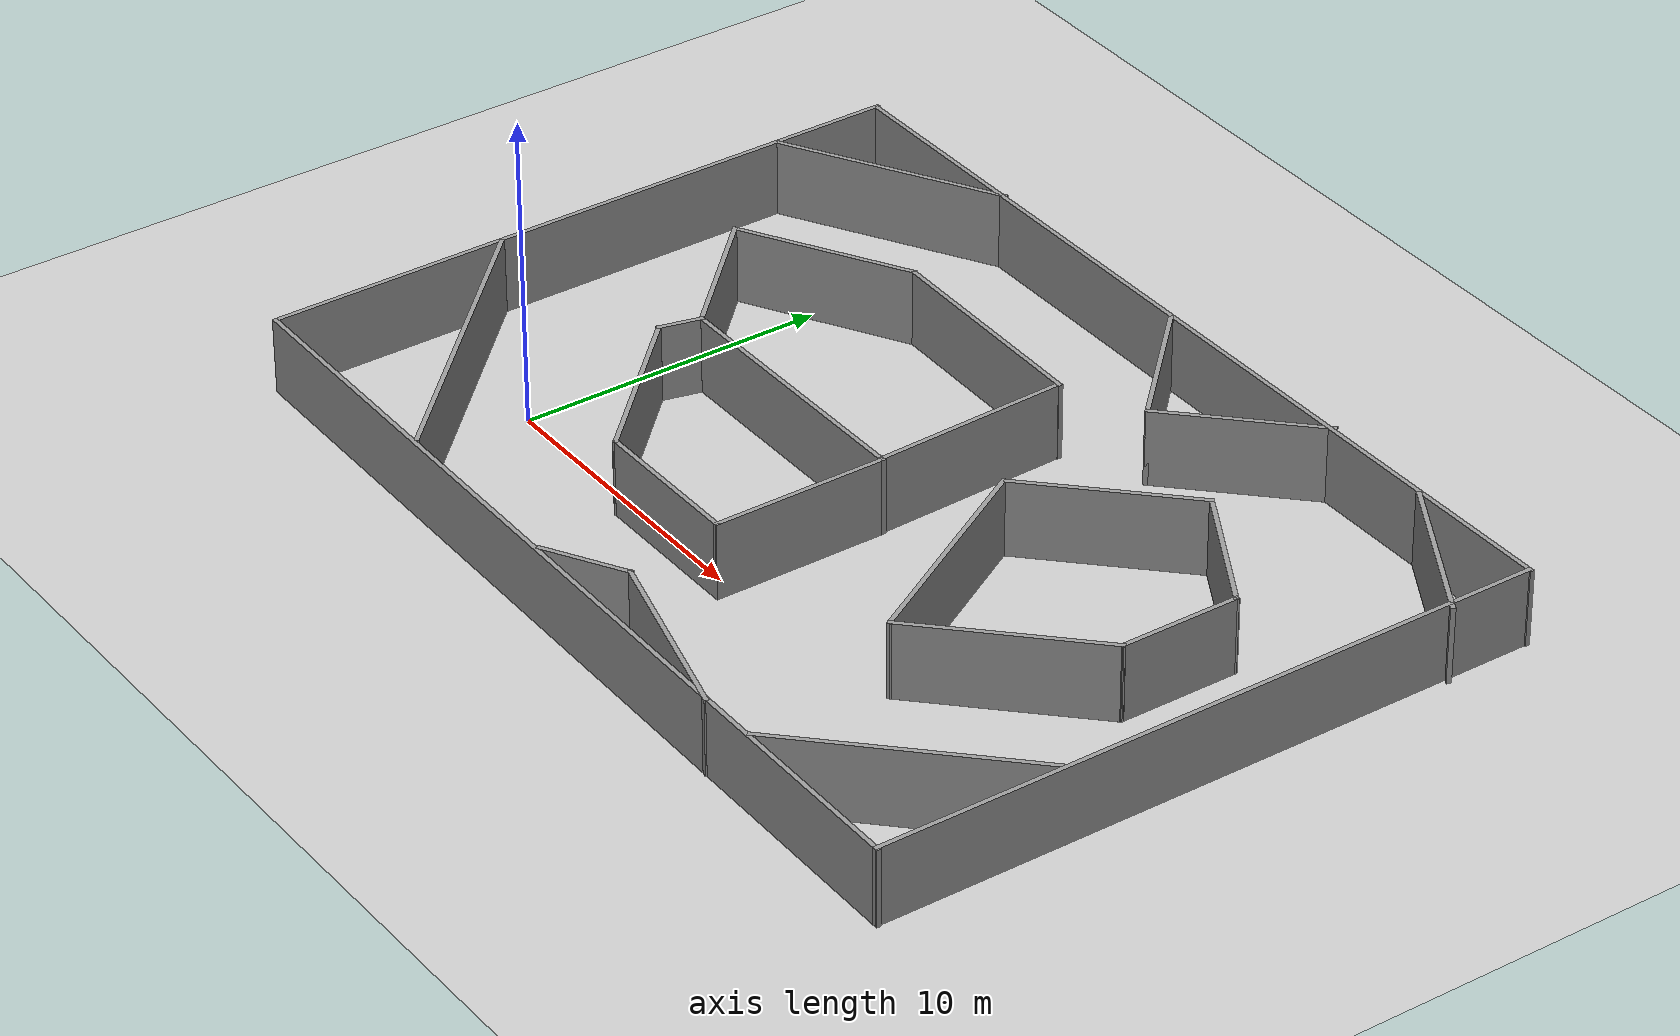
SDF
<?xml version='1.0'?>
<sdf version='1.7'>
  <world name='default'>
    <light name='sun' type='directional'>
      <cast_shadows>1</cast_shadows>
      <pose>0 0 10 0 -0 0</pose>
      <diffuse>0.8 0.8 0.8 1</diffuse>
      <specular>0.2 0.2 0.2 1</specular>
      <attenuation>
        <range>1000</range>
        <constant>0.9</constant>
        <linear>0.01</linear>
        <quadratic>0.001</quadratic>
      </attenuation>
      <direction>-0.5 0.1 -0.9</direction>
      <spot>
        <inner_angle>0</inner_angle>
        <outer_angle>0</outer_angle>
        <falloff>0</falloff>
      </spot>
    </light>
    <model name='ground_plane'>
      <static>1</static>
      <link name='link'>
        <collision name='collision'>
          <geometry>
            <plane>
              <normal>0 0 1</normal>
              <size>100 100</size>
            </plane>
          </geometry>
          <surface>
            <friction>
              <ode>
                <mu>100</mu>
                <mu2>50</mu2>
              </ode>
              <torsional>
                <ode/>
              </torsional>
            </friction>
            <contact>
              <ode/>
            </contact>
            <bounce/>
          </surface>
          <max_contacts>10</max_contacts>
        </collision>
        <visual name='visual'>
          <cast_shadows>0</cast_shadows>
          <geometry>
            <plane>
              <normal>0 0 1</normal>
              <size>100 100</size>
            </plane>
          </geometry>
          <material>
            <script>
              <uri>file://media/materials/scripts/gazebo.material</uri>
              <name>Gazebo/Grey</name>
            </script>
          </material>
        </visual>
        <self_collide>0</self_collide>
        <enable_wind>0</enable_wind>
        <kinematic>0</kinematic>
      </link>
    </model>
  <model name='demomap_2'>
    <pose>10 5.5 0 0 -0 0</pose>
    <link name='Wall_12'>
      <collision name='Wall_12_Collision'>
        <geometry>
          <box>
            <size>11 0.15 2.5</size>
          </box>
        </geometry>
        <pose>0 0 1.25 0 -0 0</pose>
      </collision>
      <visual name='Wall_12_Visual'>
        <pose>0 0 1.25 0 -0 0</pose>
        <geometry>
          <box>
            <size>11 0.15 2.5</size>
          </box>
        </geometry>
        <material>
          <script>
            <uri>file://media/materials/scripts/gazebo.material</uri>
            <name>Gazebo/Grey</name>
          </script>
          <ambient>1 1 1 1</ambient>
        </material>
        <meta>
          <layer>0</layer>
        </meta>
      </visual>
      <pose>-11.6056 -6.72231 0 0 -0 -0.785398</pose>
    </link>
    <link name='Wall_14'>
      <collision name='Wall_14_Collision'>
        <geometry>
          <box>
            <size>7.75 0.15 2.5</size>
          </box>
        </geometry>
        <pose>0 0 1.25 0 -0 0</pose>
      </collision>
      <visual name='Wall_14_Visual'>
        <pose>0 0 1.25 0 -0 0</pose>
        <geometry>
          <box>
            <size>7.75 0.15 2.5</size>
          </box>
        </geometry>
        <material>
          <script>
            <uri>file://media/materials/scripts/gazebo.material</uri>
            <name>Gazebo/Grey</name>
          </script>
          <ambient>1 1 1 1</ambient>
        </material>
        <meta>
          <layer>0</layer>
        </meta>
      </visual>
      <pose>-12.2139 8.93144 0 0 -0 0.523599</pose>
    </link>
    <link name='Wall_20'>
      <collision name='Wall_20_Collision'>
        <geometry>
          <box>
            <size>6.25 0.15 2.5</size>
          </box>
        </geometry>
        <pose>0 0 1.25 0 -0 0</pose>
      </collision>
      <visual name='Wall_20_Visual'>
        <pose>0 0 1.25 0 -0 0</pose>
        <geometry>
          <box>
            <size>6.25 0.15 2.5</size>
          </box>
        </geometry>
        <material>
          <script>
            <uri>file://media/materials/scripts/gazebo.material</uri>
            <name>Gazebo/Grey</name>
          </script>
          <ambient>1 1 1 1</ambient>
        </material>
        <meta>
          <layer>0</layer>
        </meta>
      </visual>
      <pose>-6.59383 -3.88475 0 0 -0 -0.785398</pose>
    </link>
    <link name='Wall_21'>
      <collision name='Wall_21_Collision'>
        <geometry>
          <box>
            <size>5.25 0.15 2.5</size>
          </box>
        </geometry>
        <pose>0 0 1.25 0 -0 0</pose>
      </collision>
      <visual name='Wall_21_Visual'>
        <pose>0 0 1.25 0 -0 0</pose>
        <geometry>
          <box>
            <size>5.25 0.15 2.5</size>
          </box>
        </geometry>
        <material>
          <script>
            <uri>file://media/materials/scripts/gazebo.material</uri>
            <name>Gazebo/Grey</name>
          </script>
          <ambient>1 1 1 1</ambient>
        </material>
        <meta>
          <layer>0</layer>
        </meta>
      </visual>
      <pose>-1.88715 -6.04142 0 0 -0 0</pose>
    </link>
    <link name='Wall_22'>
      <collision name='Wall_22_Collision'>
        <geometry>
          <box>
            <size>5.75 0.15 2.5</size>
          </box>
        </geometry>
        <pose>0 0 1.25 0 -0 0</pose>
      </collision>
      <visual name='Wall_22_Visual'>
        <pose>0 0 1.25 0 -0 0</pose>
        <geometry>
          <box>
            <size>5.75 0.15 2.5</size>
          </box>
        </geometry>
        <material>
          <script>
            <uri>file://media/materials/scripts/gazebo.material</uri>
            <name>Gazebo/Grey</name>
          </script>
          <ambient>1 1 1 1</ambient>
        </material>
        <meta>
          <layer>0</layer>
        </meta>
      </visual>
      <pose>0.662846 -3.24142 0 0 -0 1.5708</pose>
    </link>
    <link name='Wall_23'>
      <collision name='Wall_23_Collision'>
        <geometry>
          <box>
            <size>9.25 0.15 2.5</size>
          </box>
        </geometry>
        <pose>0 0 1.25 0 -0 0</pose>
      </collision>
      <visual name='Wall_23_Visual'>
        <pose>0 0 1.25 0 -0 0</pose>
        <geometry>
          <box>
            <size>9.25 0.15 2.5</size>
          </box>
        </geometry>
        <material>
          <script>
            <uri>file://media/materials/scripts/gazebo.material</uri>
            <name>Gazebo/Grey</name>
          </script>
          <ambient>1 1 1 1</ambient>
        </material>
        <meta>
          <layer>0</layer>
        </meta>
      </visual>
      <pose>-3.88715 -0.441422 0 0 -0 3.14159</pose>
    </link>
    <link name='Wall_24'>
      <collision name='Wall_24_Collision'>
        <geometry>
          <box>
            <size>5.25 0.15 2.5</size>
          </box>
        </geometry>
        <pose>0 0 1.25 0 -0 0</pose>
      </collision>
      <visual name='Wall_24_Visual'>
        <pose>0 0 1.25 0 -0 0</pose>
        <geometry>
          <box>
            <size>5.25 0.15 2.5</size>
          </box>
        </geometry>
        <material>
          <script>
            <uri>file://media/materials/scripts/gazebo.material</uri>
            <name>Gazebo/Grey</name>
          </script>
          <ambient>1 1 1 1</ambient>
        </material>
        <meta>
          <layer>0</layer>
        </meta>
      </visual>
      <pose>-10.2403 1.3617 0 0 -0 2.35619</pose>
    </link>
    <link name='Wall_25'>
      <collision name='Wall_25_Collision'>
        <geometry>
          <box>
            <size>6 0.15 2.5</size>
          </box>
        </geometry>
        <pose>0 0 1.25 0 -0 0</pose>
      </collision>
      <visual name='Wall_25_Visual'>
        <pose>0 0 1.25 0 -0 0</pose>
        <geometry>
          <box>
            <size>6 0.15 2.5</size>
          </box>
        </geometry>
        <material>
          <script>
            <uri>file://media/materials/scripts/gazebo.material</uri>
            <name>Gazebo/Grey</name>
          </script>
          <ambient>1 1 1 1</ambient>
        </material>
        <meta>
          <layer>0</layer>
        </meta>
      </visual>
      <pose>-9.51028 4.62732 0 0 -0 0.523599</pose>
    </link>
    <link name='Wall_26'>
      <collision name='Wall_26_Collision'>
        <geometry>
          <box>
            <size>7.54026 0.15 2.5</size>
          </box>
        </geometry>
        <pose>0 0 1.25 0 -0 0</pose>
      </collision>
      <visual name='Wall_26_Visual'>
        <pose>0 0 1.25 0 -0 0</pose>
        <geometry>
          <box>
            <size>7.54026 0.15 2.5</size>
          </box>
        </geometry>
        <material>
          <script>
            <uri>file://media/materials/scripts/gazebo.material</uri>
            <name>Gazebo/Grey</name>
          </script>
          <ambient>1 1 1 1</ambient>
        </material>
        <meta>
          <layer>0</layer>
        </meta>
      </visual>
      <pose>-3.28286 6.01112 0 0 -0 -0.021301</pose>
    </link>
    <link name='Wall_27'>
      <collision name='Wall_27_Collision'>
        <geometry>
          <box>
            <size>6.50394 0.15 2.5</size>
          </box>
        </geometry>
        <pose>0 0 1.25 0 -0 0</pose>
      </collision>
      <visual name='Wall_27_Visual'>
        <pose>0 0 1.25 0 -0 0</pose>
        <geometry>
          <box>
            <size>6.50394 0.15 2.5</size>
          </box>
        </geometry>
        <material>
          <script>
            <uri>file://media/materials/scripts/gazebo.material</uri>
            <name>Gazebo/Grey</name>
          </script>
          <ambient>1 1 1 1</ambient>
        </material>
        <meta>
          <layer>0</layer>
        </meta>
      </visual>
      <pose>0.497083 2.75741 0 0 -0 -1.53557</pose>
    </link>
    <link name='Wall_30'>
      <collision name='Wall_30_Collision'>
        <geometry>
          <box>
            <size>1.47426 0.15 2.5</size>
          </box>
        </geometry>
        <pose>0 0 1.25 0 -0 0</pose>
      </collision>
      <visual name='Wall_30_Visual'>
        <pose>0 0 1.25 0 -0 0</pose>
        <geometry>
          <box>
            <size>1.47426 0.15 2.5</size>
          </box>
        </geometry>
        <material>
          <script>
            <uri>file://media/materials/scripts/gazebo.material</uri>
            <name>Gazebo/Grey</name>
          </script>
          <ambient>1 1 1 1</ambient>
        </material>
        <meta>
          <layer>0</layer>
        </meta>
      </visual>
      <pose>-8.59383 -1.08475 0 0 -0 1.33191</pose>
    </link>
    <link name='Wall_33'>
      <collision name='Wall_33_Collision'>
        <geometry>
          <box>
            <size>5.75 0.15 2.5</size>
          </box>
        </geometry>
        <pose>0 0 1.25 0 -0 0</pose>
      </collision>
      <visual name='Wall_33_Visual'>
        <pose>0 0 1.25 0 -0 0</pose>
        <geometry>
          <box>
            <size>5.75 0.15 2.5</size>
          </box>
        </geometry>
        <material>
          <script>
            <uri>file://media/materials/scripts/gazebo.material</uri>
            <name>Gazebo/Grey</name>
          </script>
          <ambient>1 1 1 1</ambient>
        </material>
        <meta>
          <layer>0</layer>
        </meta>
      </visual>
      <pose>13.08 9.39768 0 0 -0 -0.523599</pose>
    </link>
    <link name='Wall_35'>
      <collision name='Wall_35_Collision'>
        <geometry>
          <box>
            <size>8.5 0.15 2.5</size>
          </box>
        </geometry>
        <pose>0 0 1.25 0 -0 0</pose>
      </collision>
      <visual name='Wall_35_Visual'>
        <pose>0 0 1.25 0 -0 0</pose>
        <geometry>
          <box>
            <size>8.5 0.15 2.5</size>
          </box>
        </geometry>
        <material>
          <script>
            <uri>file://media/materials/scripts/gazebo.material</uri>
            <name>Gazebo/Grey</name>
          </script>
          <ambient>1 1 1 1</ambient>
        </material>
        <meta>
          <layer>0</layer>
        </meta>
      </visual>
      <pose>12.2905 -7.87611 0 0 -0 0.785398</pose>
    </link>
    <link name='Wall_37'>
      <collision name='Wall_37_Collision'>
        <geometry>
          <box>
            <size>6 0.15 2.5</size>
          </box>
        </geometry>
        <pose>0 0 1.25 0 -0 0</pose>
      </collision>
      <visual name='Wall_37_Visual'>
        <pose>0 0 1.25 0 -0 0</pose>
        <geometry>
          <box>
            <size>6 0.15 2.5</size>
          </box>
        </geometry>
        <material>
          <script>
            <uri>file://media/materials/scripts/gazebo.material</uri>
            <name>Gazebo/Grey</name>
          </script>
          <ambient>1 1 1 1</ambient>
        </material>
        <meta>
          <layer>0</layer>
        </meta>
      </visual>
      <pose>5.55438 3.78175 0 0 -0 -2.35619</pose>
    </link>
    <link name='Wall_38'>
      <collision name='Wall_38_Collision'>
        <geometry>
          <box>
            <size>7.75 0.15 2.5</size>
          </box>
        </geometry>
        <pose>0 0 1.25 0 -0 0</pose>
      </collision>
      <visual name='Wall_38_Visual'>
        <pose>0 0 1.25 0 -0 0</pose>
        <geometry>
          <box>
            <size>7.75 0.15 2.5</size>
          </box>
        </geometry>
        <material>
          <script>
            <uri>file://media/materials/scripts/gazebo.material</uri>
            <name>Gazebo/Grey</name>
          </script>
          <ambient>1 1 1 1</ambient>
        </material>
        <meta>
          <layer>0</layer>
        </meta>
      </visual>
      <pose>5.38609 -1.57743 0 0 -0 -1.0472</pose>
    </link>
    <link name='Wall_39'>
      <collision name='Wall_39_Collision'>
        <geometry>
          <box>
            <size>6.5 0.15 2.5</size>
          </box>
        </geometry>
        <pose>0 0 1.25 0 -0 0</pose>
      </collision>
      <visual name='Wall_39_Visual'>
        <pose>0 0 1.25 0 -0 0</pose>
        <geometry>
          <box>
            <size>6.5 0.15 2.5</size>
          </box>
        </geometry>
        <material>
          <script>
            <uri>file://media/materials/scripts/gazebo.material</uri>
            <name>Gazebo/Grey</name>
          </script>
          <ambient>1 1 1 1</ambient>
        </material>
        <meta>
          <layer>0</layer>
        </meta>
      </visual>
      <pose>9.53115 -2.62326 0 0 -0 0.785398</pose>
    </link>
    <link name='Wall_40'>
      <collision name='Wall_40_Collision'>
        <geometry>
          <box>
            <size>4 0.15 2.5</size>
          </box>
        </geometry>
        <pose>0 0 1.25 0 -0 0</pose>
      </collision>
      <visual name='Wall_40_Visual'>
        <pose>0 0 1.25 0 -0 0</pose>
        <geometry>
          <box>
            <size>4 0.15 2.5</size>
          </box>
        </geometry>
        <material>
          <script>
            <uri>file://media/materials/scripts/gazebo.material</uri>
            <name>Gazebo/Grey</name>
          </script>
          <ambient>1 1 1 1</ambient>
        </material>
        <meta>
          <layer>0</layer>
        </meta>
      </visual>
      <pose>11.7762 1.5468 0 0 -0 1.5708</pose>
    </link>
    <link name='Wall_41'>
      <collision name='Wall_41_Collision'>
        <geometry>
          <box>
            <size>4.93623 0.15 2.5</size>
          </box>
        </geometry>
        <pose>0 0 1.25 0 -0 0</pose>
      </collision>
      <visual name='Wall_41_Visual'>
        <pose>0 0 1.25 0 -0 0</pose>
        <geometry>
          <box>
            <size>4.93623 0.15 2.5</size>
          </box>
        </geometry>
        <material>
          <script>
            <uri>file://media/materials/scripts/gazebo.material</uri>
            <name>Gazebo/Grey</name>
          </script>
          <ambient>1 1 1 1</ambient>
        </material>
        <meta>
          <layer>0</layer>
        </meta>
      </visual>
      <pose>9.69944 4.66092 0 0 -0 2.62158</pose>
    </link>
    <link name='Wall_44'>
      <collision name='Wall_44_Collision'>
        <geometry>
          <box>
            <size>5.25 0.15 2.5</size>
          </box>
        </geometry>
        <pose>0 0 1.25 0 -0 0</pose>
      </collision>
      <visual name='Wall_44_Visual'>
        <pose>0 0 1.25 0 -0 0</pose>
        <geometry>
          <box>
            <size>5.25 0.15 2.5</size>
          </box>
        </geometry>
        <material>
          <script>
            <uri>file://media/materials/scripts/gazebo.material</uri>
            <name>Gazebo/Grey</name>
          </script>
          <ambient>1 1 1 1</ambient>
        </material>
        <meta>
          <layer>0</layer>
        </meta>
      </visual>
      <pose>1.15211 8.96642 0 0 -0 -0.785398</pose>
    </link>
    <link name='Wall_45'>
      <collision name='Wall_45_Collision'>
        <geometry>
          <box>
            <size>5.5 0.15 2.5</size>
          </box>
        </geometry>
        <pose>0 0 1.25 0 -0 0</pose>
      </collision>
      <visual name='Wall_45_Visual'>
        <pose>0 0 1.25 0 -0 0</pose>
        <geometry>
          <box>
            <size>5.5 0.15 2.5</size>
          </box>
        </geometry>
        <material>
          <script>
            <uri>file://media/materials/scripts/gazebo.material</uri>
            <name>Gazebo/Grey</name>
          </script>
          <ambient>1 1 1 1</ambient>
        </material>
        <meta>
          <layer>0</layer>
        </meta>
      </visual>
      <pose>4.84674 9.05481 0 0 -0 0.785398</pose>
    </link>
    <link name='Wall_47'>
      <collision name='Wall_47_Collision'>
        <geometry>
          <box>
            <size>3 0.15 2.5</size>
          </box>
        </geometry>
        <pose>0 0 1.25 0 -0 0</pose>
      </collision>
      <visual name='Wall_47_Visual'>
        <pose>0 0 1.25 0 -0 0</pose>
        <geometry>
          <box>
            <size>3 0.15 2.5</size>
          </box>
        </geometry>
        <material>
          <script>
            <uri>file://media/materials/scripts/gazebo.material</uri>
            <name>Gazebo/Grey</name>
          </script>
          <ambient>1 1 1 1</ambient>
        </material>
        <meta>
          <layer>0</layer>
        </meta>
      </visual>
      <pose>-0.00193 -9.98295 0 0 -0 0.523599</pose>
    </link>
    <link name='Wall_48'>
      <collision name='Wall_48_Collision'>
        <geometry>
          <box>
            <size>6.5 0.15 2.5</size>
          </box>
        </geometry>
        <pose>0 0 1.25 0 -0 0</pose>
      </collision>
      <visual name='Wall_48_Visual'>
        <pose>0 0 1.25 0 -0 0</pose>
        <geometry>
          <box>
            <size>6.5 0.15 2.5</size>
          </box>
        </geometry>
        <material>
          <script>
            <uri>file://media/materials/scripts/gazebo.material</uri>
            <name>Gazebo/Grey</name>
          </script>
          <ambient>1 1 1 1</ambient>
        </material>
        <meta>
          <layer>0</layer>
        </meta>
      </visual>
      <pose>4.29897 -10.0922 0 0 -0 -0.261799</pose>
    </link>
    <link name='Wall_6'>
      <collision name='Wall_6_Collision'>
        <geometry>
          <box>
            <size>21.5 0.15 2.5</size>
          </box>
        </geometry>
        <pose>0 0 1.25 0 -0 0</pose>
      </collision>
      <visual name='Wall_6_Visual'>
        <pose>0 0 1.25 0 -0 0</pose>
        <geometry>
          <box>
            <size>21.5 0.15 2.5</size>
          </box>
        </geometry>
        <material>
          <script>
            <uri>file://media/materials/scripts/gazebo.material</uri>
            <name>Gazebo/Grey</name>
          </script>
          <ambient>1 1 1 1</ambient>
        </material>
        <meta>
          <layer>0</layer>
        </meta>
      </visual>
      <pose>-15.4977 0.100958 0 0 -0 -1.5708</pose>
    </link>
    <link name='Wall_7'>
      <collision name='Wall_7_Collision'>
        <geometry>
          <box>
            <size>31.008 0.15 2.5</size>
          </box>
        </geometry>
        <pose>0 0 1.25 0 -0 0</pose>
      </collision>
      <visual name='Wall_7_Visual'>
        <pose>0 0 1.25 0 -0 0</pose>
        <geometry>
          <box>
            <size>31.008 0.15 2.5</size>
          </box>
        </geometry>
        <material>
          <script>
            <uri>file://media/materials/scripts/gazebo.material</uri>
            <name>Gazebo/Grey</name>
          </script>
          <ambient>1 1 1 1</ambient>
        </material>
        <meta>
          <layer>0</layer>
        </meta>
      </visual>
      <pose>-0.06978 -10.793 0 0 -0 -0.011896</pose>
    </link>
    <link name='Wall_8'>
      <collision name='Wall_8_Collision'>
        <geometry>
          <box>
            <size>22 0.15 2.5</size>
          </box>
        </geometry>
        <pose>0 0 1.25 0 -0 0</pose>
      </collision>
      <visual name='Wall_8_Visual'>
        <pose>0 0 1.25 0 -0 0</pose>
        <geometry>
          <box>
            <size>22 0.15 2.5</size>
          </box>
        </geometry>
        <material>
          <script>
            <uri>file://media/materials/scripts/gazebo.material</uri>
            <name>Gazebo/Grey</name>
          </script>
          <ambient>1 1 1 1</ambient>
        </material>
        <meta>
          <layer>0</layer>
        </meta>
      </visual>
      <pose>15.3122 -0.051503 0 0 -0 1.5708</pose>
    </link>
    <link name='Wall_9'>
      <collision name='Wall_9_Collision'>
        <geometry>
          <box>
            <size>31.0061 0.15 2.5</size>
          </box>
        </geometry>
        <pose>0 0 1.25 0 -0 0</pose>
      </collision>
      <visual name='Wall_9_Visual'>
        <pose>0 0 1.25 0 -0 0</pose>
        <geometry>
          <box>
            <size>31.0061 0.15 2.5</size>
          </box>
        </geometry>
        <material>
          <script>
            <uri>file://media/materials/scripts/gazebo.material</uri>
            <name>Gazebo/Grey</name>
          </script>
          <ambient>1 1 1 1</ambient>
        </material>
        <meta>
          <layer>0</layer>
        </meta>
      </visual>
      <pose>-0.06978 10.807 0 0 -0 -3.13728</pose>
    </link>
    <static>1</static>
  </model>
  </world>
</sdf>
